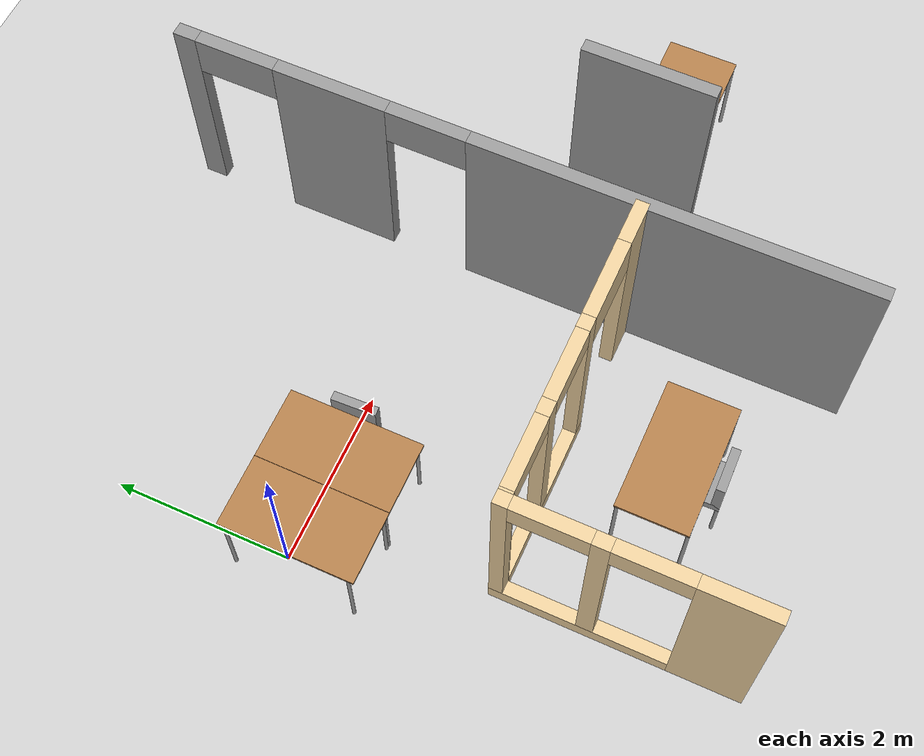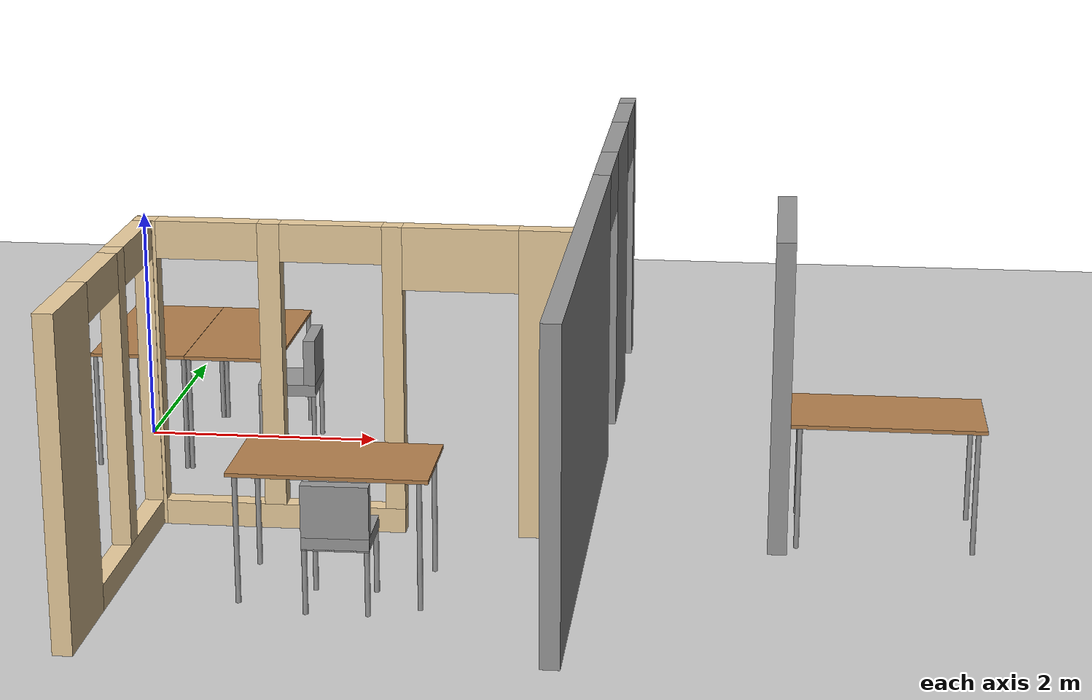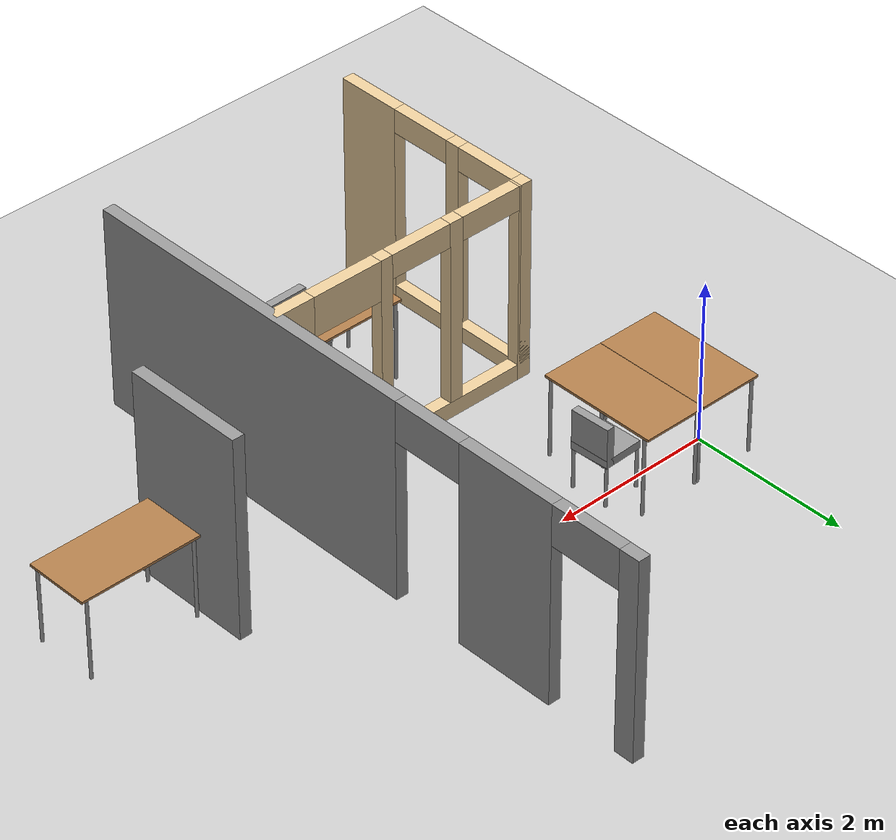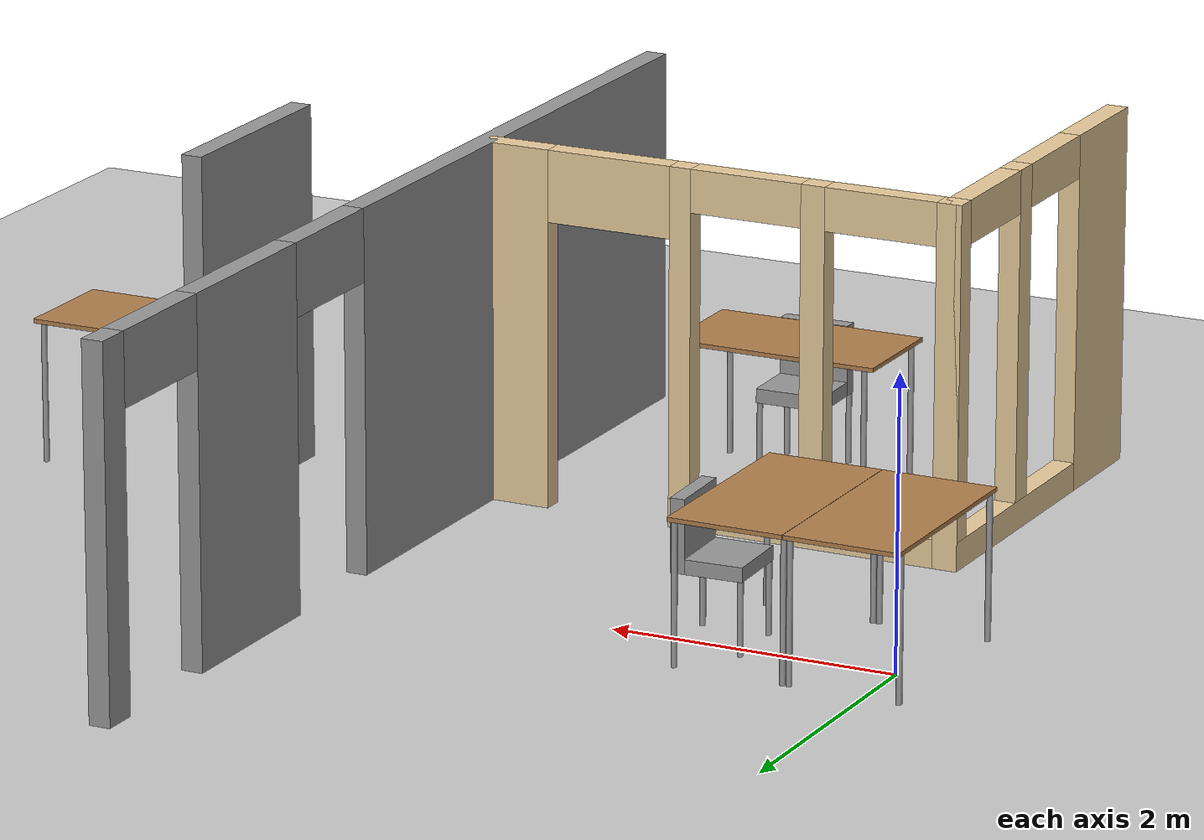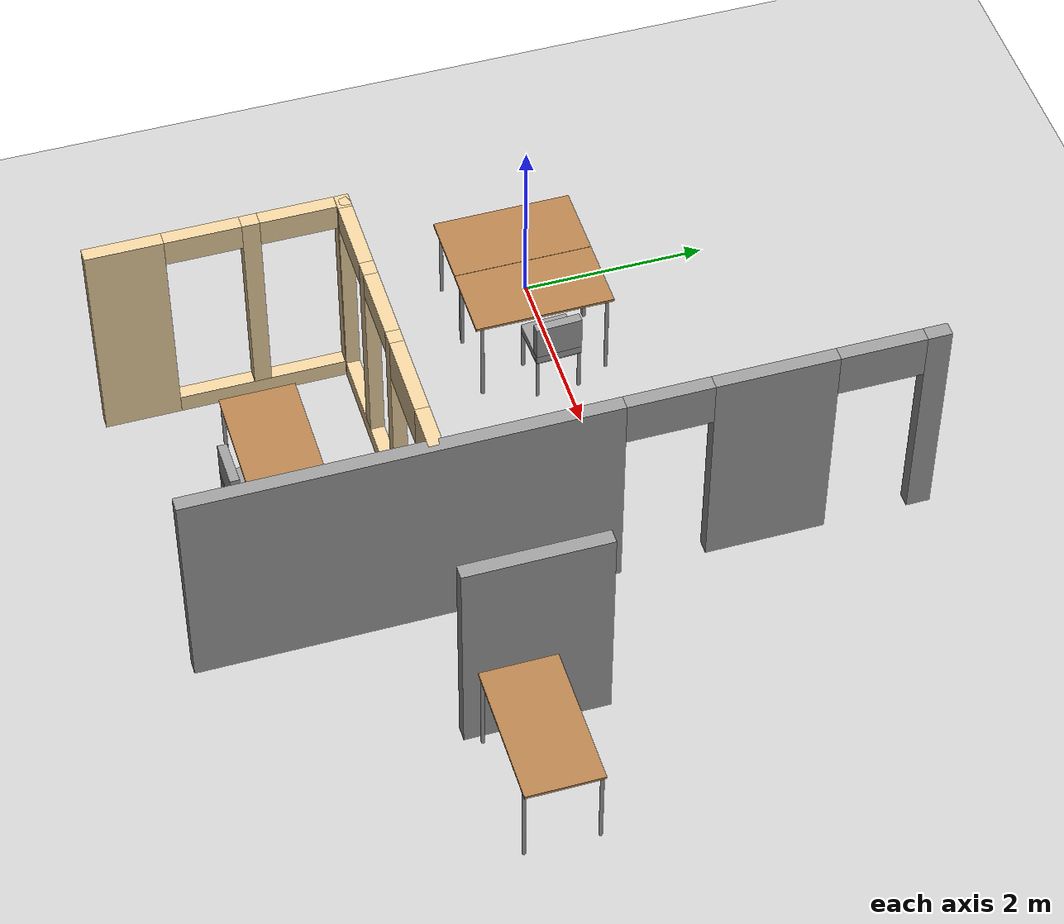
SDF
<sdf version="1.6">
 <world name="default">
  <model name="ground_plane">
   <static>1</static>
   <link name="link">
    <collision name="collision">
     <geometry><plane><normal>0 0 1</normal><size>100 100</size></plane></geometry>
     <surface>
      <contact><collide_bitmask>65535</collide_bitmask></contact>
      <friction><ode><mu>100</mu><mu2>50</mu2></ode></friction>
     </surface>
    </collision>
    <visual name="visual">
     <cast_shadows>0</cast_shadows>
     <geometry><plane><normal>0 0 1</normal><size>100 100</size></plane></geometry>
     <material>
      <script><uri>file://media/materials/scripts/gazebo.material</uri><name>Gazebo/Grey</name></script>
     </material>
    </visual>
   </link>
  </model>
  <model name="dunder_mifflin_scranton_full">
   <pose>4.5312 0.479645 0 0 -0 0</pose>
   <link name="Wall_26">
    <pose>-0.532245 -1.26075 0 0 -0 -1.5708</pose>
    <visual name="Wall_26_Visual_0">
     <pose>-3.74743 0 1.25 0 -0 0</pose>
     <geometry><box><size>0.255133 0.15 2.5</size></box></geometry>
     <material>
      <script><uri>file://media/materials/scripts/gazebo.material</uri><name>Gazebo/Grey</name></script>
      <ambient>1 1 1 1</ambient>
     </material>
     <meta><layer>0</layer></meta>
    </visual>
    <collision name="Wall_26_Collision_0">
     <geometry><box><size>0.255133 0.15 2.5</size></box></geometry>
     <pose>-3.74743 0 1.25 0 -0 0</pose>
    </collision>
    <visual name="Wall_26_Visual_1">
     <pose>-2.08102 0 1.25 0 -0 0</pose>
     <geometry><box><size>1.27769 0.15 2.5</size></box></geometry>
     <material>
      <script><uri>file://media/materials/scripts/gazebo.material</uri><name>Gazebo/Grey</name></script>
      <ambient>1 1 1 1</ambient>
     </material>
     <meta><layer>0</layer></meta>
    </visual>
    <collision name="Wall_26_Collision_1">
     <geometry><box><size>1.27769 0.15 2.5</size></box></geometry>
     <pose>-2.08102 0 1.25 0 -0 0</pose>
    </collision>
    <visual name="Wall_26_Visual_2">
     <pose>1.66641 0 1.25 0 -0 0</pose>
     <geometry><box><size>4.41718 0.15 2.5</size></box></geometry>
     <material>
      <script><uri>file://media/materials/scripts/gazebo.material</uri><name>Gazebo/Grey</name></script>
      <ambient>1 1 1 1</ambient>
     </material>
     <meta><layer>0</layer></meta>
    </visual>
    <collision name="Wall_26_Collision_2">
     <geometry><box><size>4.41718 0.15 2.5</size></box></geometry>
     <pose>1.66641 0 1.25 0 -0 0</pose>
    </collision>
    <visual name="Wall_26_Visual_3">
     <pose>-3.16987 0 2.25 0 -0 0</pose>
     <geometry><box><size>0.9 0.15 0.5</size></box></geometry>
     <material>
      <script><uri>file://media/materials/scripts/gazebo.material</uri><name>Gazebo/Grey</name></script>
      <ambient>1 1 1 1</ambient>
     </material>
     <meta><layer>0</layer></meta>
    </visual>
    <collision name="Wall_26_Collision_3">
     <geometry><box><size>0.9 0.15 0.5</size></box></geometry>
     <pose>-3.16987 0 2.25 0 -0 0</pose>
    </collision>
    <visual name="Wall_26_Visual_4">
     <pose>-0.992175 0 2.25 0 -0 0</pose>
     <geometry><box><size>0.9 0.15 0.5</size></box></geometry>
     <material>
      <script><uri>file://media/materials/scripts/gazebo.material</uri><name>Gazebo/Grey</name></script>
      <ambient>1 1 1 1</ambient>
     </material>
     <meta><layer>0</layer></meta>
    </visual>
    <collision name="Wall_26_Collision_4">
     <geometry><box><size>0.9 0.15 0.5</size></box></geometry>
     <pose>-0.992175 0 2.25 0 -0 0</pose>
    </collision>
   </link>
   <link name="Wall_28">
    <pose>-3.95331 -3.89431 0 0 -0 1.5708</pose>
    <visual name="Wall_28_Visual_0">
     <pose>-0.969422 0 1.25 0 -0 0</pose>
     <geometry><box><size>0.811156 0.15 2.5</size></box></geometry>
     <material>
      <script><uri>file://media/materials/scripts/gazebo.material</uri><name>Gazebo/Grey</name></script>
      <ambient>0.921569 0.807843 0.615686 1</ambient>
     </material>
     <meta><layer>0</layer></meta>
    </visual>
    <collision name="Wall_28_Collision_0">
     <geometry><box><size>0.811156 0.15 2.5</size></box></geometry>
     <pose>-0.969422 0 1.25 0 -0 0</pose>
    </collision>
    <visual name="Wall_28_Visual_1">
     <pose>0.405578 0 0.1 0 -0 0</pose>
     <geometry><box><size>1.93884 0.15 0.2</size></box></geometry>
     <material>
      <script><uri>file://media/materials/scripts/gazebo.material</uri><name>Gazebo/Grey</name></script>
      <ambient>0.921569 0.807843 0.615686 1</ambient>
     </material>
     <meta><layer>0</layer></meta>
    </visual>
    <collision name="Wall_28_Collision_1">
     <geometry><box><size>1.93884 0.15 0.2</size></box></geometry>
     <pose>0.405578 0 0.1 0 -0 0</pose>
    </collision>
    <visual name="Wall_28_Visual_2">
     <pose>0.328659 0 1.35 0 -0 0</pose>
     <geometry><box><size>0.185005 0.15 2.3</size></box></geometry>
     <material>
      <script><uri>file://media/materials/scripts/gazebo.material</uri><name>Gazebo/Grey</name></script>
      <ambient>0.921569 0.807843 0.615686 1</ambient>
     </material>
     <meta><layer>0</layer></meta>
    </visual>
    <collision name="Wall_28_Collision_2">
     <geometry><box><size>0.185005 0.15 2.3</size></box></geometry>
     <pose>0.328659 0 1.35 0 -0 0</pose>
    </collision>
    <visual name="Wall_28_Visual_3">
     <pose>1.29808 0 1.35 0 -0 0</pose>
     <geometry><box><size>0.153838 0.15 2.3</size></box></geometry>
     <material>
      <script><uri>file://media/materials/scripts/gazebo.material</uri><name>Gazebo/Grey</name></script>
      <ambient>0.921569 0.807843 0.615686 1</ambient>
     </material>
     <meta><layer>0</layer></meta>
    </visual>
    <collision name="Wall_28_Collision_3">
     <geometry><box><size>0.153838 0.15 2.3</size></box></geometry>
     <pose>1.29808 0 1.35 0 -0 0</pose>
    </collision>
    <visual name="Wall_28_Visual_4">
     <pose>-0.163844 0 2.35 0 -0 0</pose>
     <geometry><box><size>0.8 0.15 0.3</size></box></geometry>
     <material>
      <script><uri>file://media/materials/scripts/gazebo.material</uri><name>Gazebo/Grey</name></script>
      <ambient>0.921569 0.807843 0.615686 1</ambient>
     </material>
     <meta><layer>0</layer></meta>
    </visual>
    <collision name="Wall_28_Collision_4">
     <geometry><box><size>0.8 0.15 0.3</size></box></geometry>
     <pose>-0.163844 0 2.35 0 -0 0</pose>
    </collision>
    <visual name="Wall_28_Visual_5">
     <pose>0.821162 0 2.35 0 -0 0</pose>
     <geometry><box><size>0.8 0.15 0.3</size></box></geometry>
     <material>
      <script><uri>file://media/materials/scripts/gazebo.material</uri><name>Gazebo/Grey</name></script>
      <ambient>0.921569 0.807843 0.615686 1</ambient>
     </material>
     <meta><layer>0</layer></meta>
    </visual>
    <collision name="Wall_28_Collision_5">
     <geometry><box><size>0.8 0.15 0.3</size></box></geometry>
     <pose>0.821162 0 2.35 0 -0 0</pose>
    </collision>
   </link>
   <link name="Wall_29">
    <pose>-2.27831 -2.59431 0 0 -0 0</pose>
    <visual name="Wall_29_Visual_0">
     <pose>-1.66131 0 1.25 0 -0 0</pose>
     <geometry><box><size>0.177371 0.15 2.5</size></box></geometry>
     <material>
      <script><uri>file://media/materials/scripts/gazebo.material</uri><name>Gazebo/Grey</name></script>
      <ambient>0.921569 0.807843 0.615686 1</ambient>
     </material>
     <meta><layer>0</layer></meta>
    </visual>
    <collision name="Wall_29_Collision_0">
     <geometry><box><size>0.177371 0.15 2.5</size></box></geometry>
     <pose>-1.66131 0 1.25 0 -0 0</pose>
    </collision>
    <visual name="Wall_29_Visual_1">
     <pose>1.50358 0 1.25 0 -0 0</pose>
     <geometry><box><size>0.492835 0.15 2.5</size></box></geometry>
     <material>
      <script><uri>file://media/materials/scripts/gazebo.material</uri><name>Gazebo/Grey</name></script>
      <ambient>0.921569 0.807843 0.615686 1</ambient>
     </material>
     <meta><layer>0</layer></meta>
    </visual>
    <collision name="Wall_29_Collision_1">
     <geometry><box><size>0.492835 0.15 2.5</size></box></geometry>
     <pose>1.50358 0 1.25 0 -0 0</pose>
    </collision>
    <visual name="Wall_29_Visual_2">
     <pose>-0.607732 0 0.1 0 -0 0</pose>
     <geometry><box><size>1.92979 0.15 0.2</size></box></geometry>
     <material>
      <script><uri>file://media/materials/scripts/gazebo.material</uri><name>Gazebo/Grey</name></script>
      <ambient>0.921569 0.807843 0.615686 1</ambient>
     </material>
     <meta><layer>0</layer></meta>
    </visual>
    <collision name="Wall_29_Collision_2">
     <geometry><box><size>1.92979 0.15 0.2</size></box></geometry>
     <pose>-0.607732 0 0.1 0 -0 0</pose>
    </collision>
    <visual name="Wall_29_Visual_3">
     <pose>-0.685949 0 1.35 0 -0 0</pose>
     <geometry><box><size>0.17336 0.15 2.3</size></box></geometry>
     <material>
      <script><uri>file://media/materials/scripts/gazebo.material</uri><name>Gazebo/Grey</name></script>
      <ambient>0.921569 0.807843 0.615686 1</ambient>
     </material>
     <meta><layer>0</layer></meta>
    </visual>
    <collision name="Wall_29_Collision_3">
     <geometry><box><size>0.17336 0.15 2.3</size></box></geometry>
     <pose>-0.685949 0 1.35 0 -0 0</pose>
    </collision>
    <visual name="Wall_29_Visual_4">
     <pose>0.278948 0 1.35 0 -0 0</pose>
     <geometry><box><size>0.156434 0.15 2.3</size></box></geometry>
     <material>
      <script><uri>file://media/materials/scripts/gazebo.material</uri><name>Gazebo/Grey</name></script>
      <ambient>0.921569 0.807843 0.615686 1</ambient>
     </material>
     <meta><layer>0</layer></meta>
    </visual>
    <collision name="Wall_29_Collision_4">
     <geometry><box><size>0.156434 0.15 2.3</size></box></geometry>
     <pose>0.278948 0 1.35 0 -0 0</pose>
    </collision>
    <visual name="Wall_29_Visual_5">
     <pose>0.807165 0 2.25 0 -0 0</pose>
     <geometry><box><size>0.9 0.15 0.5</size></box></geometry>
     <material>
      <script><uri>file://media/materials/scripts/gazebo.material</uri><name>Gazebo/Grey</name></script>
      <ambient>0.921569 0.807843 0.615686 1</ambient>
     </material>
     <meta><layer>0</layer></meta>
    </visual>
    <collision name="Wall_29_Collision_5">
     <geometry><box><size>0.9 0.15 0.5</size></box></geometry>
     <pose>0.807165 0 2.25 0 -0 0</pose>
    </collision>
    <visual name="Wall_29_Visual_6">
     <pose>-1.17263 0 2.35 0 -0 0</pose>
     <geometry><box><size>0.8 0.15 0.3</size></box></geometry>
     <material>
      <script><uri>file://media/materials/scripts/gazebo.material</uri><name>Gazebo/Grey</name></script>
      <ambient>0.921569 0.807843 0.615686 1</ambient>
     </material>
     <meta><layer>0</layer></meta>
    </visual>
    <collision name="Wall_29_Collision_6">
     <geometry><box><size>0.8 0.15 0.3</size></box></geometry>
     <pose>-1.17263 0 2.35 0 -0 0</pose>
    </collision>
    <visual name="Wall_29_Visual_7">
     <pose>-0.199269 0 2.35 0 -0 0</pose>
     <geometry><box><size>0.8 0.15 0.3</size></box></geometry>
     <material>
      <script><uri>file://media/materials/scripts/gazebo.material</uri><name>Gazebo/Grey</name></script>
      <ambient>0.921569 0.807843 0.615686 1</ambient>
     </material>
     <meta><layer>0</layer></meta>
    </visual>
    <collision name="Wall_29_Collision_7">
     <geometry><box><size>0.8 0.15 0.3</size></box></geometry>
     <pose>-0.199269 0 2.35 0 -0 0</pose>
    </collision>
   </link>
   <link name="Wall_55">
    <collision name="Wall_55_Collision">
     <geometry><box><size>1.5 0.15 2.5</size></box></geometry>
     <pose>0 0 1.25 0 -0 0</pose>
    </collision>
    <visual name="Wall_55_Visual">
     <pose>0 0 1.25 0 -0 0</pose>
     <geometry><box><size>1.5 0.15 2.5</size></box></geometry>
     <material>
      <script><uri>file://media/materials/scripts/gazebo.material</uri><name>Gazebo/Grey</name></script>
      <ambient>1 1 1 1</ambient>
     </material>
     <meta><layer>0</layer></meta>
    </visual>
    <pose>1.01387 -2.07397 0 0 -0 -1.5708</pose>
   </link>
   <static>1</static>
  </model>
  <model name="table_7">
   <static>1</static>
   <link name="link">
    <collision name="surface">
     <pose>0 0 1 0 -0 0</pose>
     <geometry><box><size>1.5 0.8 0.03</size></box></geometry>
     <surface><friction><ode><mu>0.6</mu><mu2>0.6</mu2></ode></friction></surface>
    </collision>
    <visual name="visual1">
     <pose>0 0 1 0 -0 0</pose>
     <geometry><box><size>1.5 0.8 0.03</size></box></geometry>
     <material>
      <script><uri>file://media/materials/scripts/gazebo.material</uri><name>Gazebo/Wood</name></script>
     </material>
    </visual>
    <collision name="front_left_leg">
     <pose>0.68 0.38 0.5 0 -0 0</pose>
     <geometry><cylinder><radius>0.02</radius><length>1</length></cylinder></geometry>
    </collision>
    <visual name="front_left_leg">
     <pose>0.68 0.38 0.5 0 -0 0</pose>
     <geometry><cylinder><radius>0.02</radius><length>1</length></cylinder></geometry>
     <material>
      <script><uri>file://media/materials/scripts/gazebo.material</uri><name>Gazebo/Grey</name></script>
     </material>
    </visual>
    <collision name="front_right_leg">
     <pose>0.68 -0.38 0.5 0 -0 0</pose>
     <geometry><cylinder><radius>0.02</radius><length>1</length></cylinder></geometry>
    </collision>
    <visual name="front_right_leg">
     <pose>0.68 -0.38 0.5 0 -0 0</pose>
     <geometry><cylinder><radius>0.02</radius><length>1</length></cylinder></geometry>
     <material>
      <script><uri>file://media/materials/scripts/gazebo.material</uri><name>Gazebo/Grey</name></script>
     </material>
    </visual>
    <collision name="back_right_leg">
     <pose>-0.68 -0.38 0.5 0 -0 0</pose>
     <geometry><cylinder><radius>0.02</radius><length>1</length></cylinder></geometry>
    </collision>
    <visual name="back_right_leg">
     <pose>-0.68 -0.38 0.5 0 -0 0</pose>
     <geometry><cylinder><radius>0.02</radius><length>1</length></cylinder></geometry>
     <material>
      <script><uri>file://media/materials/scripts/gazebo.material</uri><name>Gazebo/Grey</name></script>
     </material>
    </visual>
    <collision name="back_left_leg">
     <pose>-0.68 0.38 0.5 0 -0 0</pose>
     <geometry><cylinder><radius>0.02</radius><length>1</length></cylinder></geometry>
    </collision>
    <visual name="back_left_leg">
     <pose>-0.68 0.38 0.5 0 -0 0</pose>
     <geometry><cylinder><radius>0.02</radius><length>1</length></cylinder></geometry>
     <material>
      <script><uri>file://media/materials/scripts/gazebo.material</uri><name>Gazebo/Grey</name></script>
     </material>
    </visual>
   </link>
   <pose>0.946741 -0.198851 0 0 0 -1.5708</pose>
  </model>
  <model name="table_8">
   <static>1</static>
   <link name="link">
    <collision name="surface">
     <pose>0 0 1 0 -0 0</pose>
     <geometry><box><size>1.5 0.8 0.03</size></box></geometry>
     <surface><friction><ode><mu>0.6</mu><mu2>0.6</mu2></ode></friction></surface>
    </collision>
    <visual name="visual1">
     <pose>0 0 1 0 -0 0</pose>
     <geometry><box><size>1.5 0.8 0.03</size></box></geometry>
     <material>
      <script><uri>file://media/materials/scripts/gazebo.material</uri><name>Gazebo/Wood</name></script>
     </material>
    </visual>
    <collision name="front_left_leg">
     <pose>0.68 0.38 0.5 0 -0 0</pose>
     <geometry><cylinder><radius>0.02</radius><length>1</length></cylinder></geometry>
    </collision>
    <visual name="front_left_leg">
     <pose>0.68 0.38 0.5 0 -0 0</pose>
     <geometry><cylinder><radius>0.02</radius><length>1</length></cylinder></geometry>
     <material>
      <script><uri>file://media/materials/scripts/gazebo.material</uri><name>Gazebo/Grey</name></script>
     </material>
    </visual>
    <collision name="front_right_leg">
     <pose>0.68 -0.38 0.5 0 -0 0</pose>
     <geometry><cylinder><radius>0.02</radius><length>1</length></cylinder></geometry>
    </collision>
    <visual name="front_right_leg">
     <pose>0.68 -0.38 0.5 0 -0 0</pose>
     <geometry><cylinder><radius>0.02</radius><length>1</length></cylinder></geometry>
     <material>
      <script><uri>file://media/materials/scripts/gazebo.material</uri><name>Gazebo/Grey</name></script>
     </material>
    </visual>
    <collision name="back_right_leg">
     <pose>-0.68 -0.38 0.5 0 -0 0</pose>
     <geometry><cylinder><radius>0.02</radius><length>1</length></cylinder></geometry>
    </collision>
    <visual name="back_right_leg">
     <pose>-0.68 -0.38 0.5 0 -0 0</pose>
     <geometry><cylinder><radius>0.02</radius><length>1</length></cylinder></geometry>
     <material>
      <script><uri>file://media/materials/scripts/gazebo.material</uri><name>Gazebo/Grey</name></script>
     </material>
    </visual>
    <collision name="back_left_leg">
     <pose>-0.68 0.38 0.5 0 -0 0</pose>
     <geometry><cylinder><radius>0.02</radius><length>1</length></cylinder></geometry>
    </collision>
    <visual name="back_left_leg">
     <pose>-0.68 0.38 0.5 0 -0 0</pose>
     <geometry><cylinder><radius>0.02</radius><length>1</length></cylinder></geometry>
     <material>
      <script><uri>file://media/materials/scripts/gazebo.material</uri><name>Gazebo/Grey</name></script>
     </material>
    </visual>
   </link>
   <pose>0.143422 -0.19819 0 0 0 -1.5708</pose>
  </model>
  <model name="chair_9">
   <link name="link_0">
    <inertial>
     <mass>1</mass>
     <inertia><ixx>0.145833</ixx><ixy>0</ixy><ixz>0</ixz><iyy>0.145833</iyy><iyz>0</iyz><izz>0.125</izz></inertia>
    </inertial>
    <pose>-0.23 -0.19667 -0.280001 0 -0 0</pose>
    <visual name="visual">
     <geometry><cylinder><radius>0.02</radius><length>0.5</length></cylinder></geometry>
     <material>
      <lighting>1</lighting>
      <script><uri>file://media/materials/scripts/gazebo.material</uri><name>Gazebo/Grey</name></script>
      <shader type="vertex"><normal_map>__default__</normal_map></shader>
      <ambient>0.3 0.3 0.3 1</ambient>
      <diffuse>0.7 0.7 0.7 1</diffuse>
      <specular>0.01 0.01 0.01 1</specular>
      <emissive>0 0 0 1</emissive>
     </material>
    </visual>
    <collision name="collision">
     <geometry><cylinder><radius>0.02</radius><length>0.5</length></cylinder></geometry>
     <surface>
      <friction>
       <ode><mu>1</mu><mu2>1</mu2><fdir1>0 0 0</fdir1><slip1>0</slip1><slip2>0</slip2></ode>
       <torsional>
        <coefficient>1</coefficient>
        <patch_radius>0</patch_radius>
        <surface_radius>0</surface_radius>
        <use_patch_radius>1</use_patch_radius>
        <ode><slip>0</slip></ode>
       </torsional>
      </friction>
      <bounce><restitution_coefficient>0</restitution_coefficient><threshold>1e+06</threshold></bounce>
      <contact>
       <collide_without_contact>0</collide_without_contact>
       <collide_without_contact_bitmask>1</collide_without_contact_bitmask>
       <collide_bitmask>1</collide_bitmask>
       <ode>
        <soft_cfm>0</soft_cfm>
        <soft_erp>0.2</soft_erp>
        <kp>1e+13</kp>
        <kd>1</kd>
        <max_vel>0.01</max_vel>
        <min_depth>0</min_depth>
       </ode>
       <bullet>
        <split_impulse>1</split_impulse>
        <split_impulse_penetration_threshold>-0.01</split_impulse_penetration_threshold>
        <soft_cfm>0</soft_cfm>
        <soft_erp>0.2</soft_erp>
        <kp>1e+13</kp>
        <kd>1</kd>
       </bullet>
      </contact>
     </surface>
    </collision>
   </link>
   <link name="link_0_clone">
    <inertial>
     <mass>1</mass>
     <inertia><ixx>0.145833</ixx><ixy>0</ixy><ixz>0</ixz><iyy>0.145833</iyy><iyz>0</iyz><izz>0.125</izz></inertia>
    </inertial>
    <pose>0.23 -0.19667 -0.280001 0 -0 0</pose>
    <visual name="visual">
     <geometry><cylinder><radius>0.02</radius><length>0.5</length></cylinder></geometry>
     <material>
      <lighting>1</lighting>
      <script><uri>file://media/materials/scripts/gazebo.material</uri><name>Gazebo/Grey</name></script>
      <shader type="vertex"><normal_map>__default__</normal_map></shader>
      <ambient>0.3 0.3 0.3 1</ambient>
      <diffuse>0.7 0.7 0.7 1</diffuse>
      <specular>0.01 0.01 0.01 1</specular>
      <emissive>0 0 0 1</emissive>
     </material>
    </visual>
    <collision name="collision">
     <geometry><cylinder><radius>0.02</radius><length>0.5</length></cylinder></geometry>
     <surface>
      <friction>
       <ode><mu>1</mu><mu2>1</mu2><fdir1>0 0 0</fdir1><slip1>0</slip1><slip2>0</slip2></ode>
       <torsional>
        <coefficient>1</coefficient>
        <patch_radius>0</patch_radius>
        <surface_radius>0</surface_radius>
        <use_patch_radius>1</use_patch_radius>
        <ode><slip>0</slip></ode>
       </torsional>
      </friction>
      <bounce><restitution_coefficient>0</restitution_coefficient><threshold>1e+06</threshold></bounce>
      <contact>
       <collide_without_contact>0</collide_without_contact>
       <collide_without_contact_bitmask>1</collide_without_contact_bitmask>
       <collide_bitmask>1</collide_bitmask>
       <ode>
        <soft_cfm>0</soft_cfm>
        <soft_erp>0.2</soft_erp>
        <kp>1e+13</kp>
        <kd>1</kd>
        <max_vel>0.01</max_vel>
        <min_depth>0</min_depth>
       </ode>
       <bullet>
        <split_impulse>1</split_impulse>
        <split_impulse_penetration_threshold>-0.01</split_impulse_penetration_threshold>
        <soft_cfm>0</soft_cfm>
        <soft_erp>0.2</soft_erp>
        <kp>1e+13</kp>
        <kd>1</kd>
       </bullet>
      </contact>
     </surface>
    </collision>
   </link>
   <link name="link_0_clone_0">
    <inertial>
     <mass>1</mass>
     <inertia><ixx>0.145833</ixx><ixy>0</ixy><ixz>0</ixz><iyy>0.145833</iyy><iyz>0</iyz><izz>0.125</izz></inertia>
    </inertial>
    <pose>0.23 0.26333 -0.280001 0 -0 0</pose>
    <visual name="visual">
     <geometry><cylinder><radius>0.02</radius><length>0.5</length></cylinder></geometry>
     <material>
      <lighting>1</lighting>
      <script><uri>file://media/materials/scripts/gazebo.material</uri><name>Gazebo/Grey</name></script>
      <shader type="vertex"><normal_map>__default__</normal_map></shader>
      <ambient>0.3 0.3 0.3 1</ambient>
      <diffuse>0.7 0.7 0.7 1</diffuse>
      <specular>0.01 0.01 0.01 1</specular>
      <emissive>0 0 0 1</emissive>
     </material>
    </visual>
    <collision name="collision">
     <geometry><cylinder><radius>0.02</radius><length>0.5</length></cylinder></geometry>
     <surface>
      <friction>
       <ode><mu>1</mu><mu2>1</mu2><fdir1>0 0 0</fdir1><slip1>0</slip1><slip2>0</slip2></ode>
       <torsional>
        <coefficient>1</coefficient>
        <patch_radius>0</patch_radius>
        <surface_radius>0</surface_radius>
        <use_patch_radius>1</use_patch_radius>
        <ode><slip>0</slip></ode>
       </torsional>
      </friction>
      <bounce><restitution_coefficient>0</restitution_coefficient><threshold>1e+06</threshold></bounce>
      <contact>
       <collide_without_contact>0</collide_without_contact>
       <collide_without_contact_bitmask>1</collide_without_contact_bitmask>
       <collide_bitmask>1</collide_bitmask>
       <ode>
        <soft_cfm>0</soft_cfm>
        <soft_erp>0.2</soft_erp>
        <kp>1e+13</kp>
        <kd>1</kd>
        <max_vel>0.01</max_vel>
        <min_depth>0</min_depth>
       </ode>
       <bullet>
        <split_impulse>1</split_impulse>
        <split_impulse_penetration_threshold>-0.01</split_impulse_penetration_threshold>
        <soft_cfm>0</soft_cfm>
        <soft_erp>0.2</soft_erp>
        <kp>1e+13</kp>
        <kd>1</kd>
       </bullet>
      </contact>
     </surface>
    </collision>
   </link>
   <link name="link_0_clone_1">
    <inertial>
     <mass>1</mass>
     <inertia><ixx>0.145833</ixx><ixy>0</ixy><ixz>0</ixz><iyy>0.145833</iyy><iyz>0</iyz><izz>0.125</izz></inertia>
    </inertial>
    <pose>-0.23 0.26333 -0.280001 0 -0 0</pose>
    <visual name="visual">
     <geometry><cylinder><radius>0.02</radius><length>0.5</length></cylinder></geometry>
     <material>
      <lighting>1</lighting>
      <script><uri>file://media/materials/scripts/gazebo.material</uri><name>Gazebo/Grey</name></script>
      <shader type="vertex"><normal_map>__default__</normal_map></shader>
      <ambient>0.3 0.3 0.3 1</ambient>
      <diffuse>0.7 0.7 0.7 1</diffuse>
      <specular>0.01 0.01 0.01 1</specular>
      <emissive>0 0 0 1</emissive>
     </material>
    </visual>
    <collision name="collision">
     <geometry><cylinder><radius>0.02</radius><length>0.5</length></cylinder></geometry>
     <surface>
      <friction>
       <ode><mu>1</mu><mu2>1</mu2><fdir1>0 0 0</fdir1><slip1>0</slip1><slip2>0</slip2></ode>
       <torsional>
        <coefficient>1</coefficient>
        <patch_radius>0</patch_radius>
        <surface_radius>0</surface_radius>
        <use_patch_radius>1</use_patch_radius>
        <ode><slip>0</slip></ode>
       </torsional>
      </friction>
      <bounce><restitution_coefficient>0</restitution_coefficient><threshold>1e+06</threshold></bounce>
      <contact>
       <collide_without_contact>0</collide_without_contact>
       <collide_without_contact_bitmask>1</collide_without_contact_bitmask>
       <collide_bitmask>1</collide_bitmask>
       <ode>
        <soft_cfm>0</soft_cfm>
        <soft_erp>0.2</soft_erp>
        <kp>1e+13</kp>
        <kd>1</kd>
        <max_vel>0.01</max_vel>
        <min_depth>0</min_depth>
       </ode>
       <bullet>
        <split_impulse>1</split_impulse>
        <split_impulse_penetration_threshold>-0.01</split_impulse_penetration_threshold>
        <soft_cfm>0</soft_cfm>
        <soft_erp>0.2</soft_erp>
        <kp>1e+13</kp>
        <kd>1</kd>
       </bullet>
      </contact>
     </surface>
    </collision>
   </link>
   <link name="link_2">
    <inertial>
     <mass>1</mass>
     <inertia>
      <ixx>0.166667</ixx>
      <ixy>0</ixy>
      <ixz>0</ixz>
      <iyy>0.166667</iyy>
      <iyz>0</iyz>
      <izz>0.166667</izz>
     </inertia>
    </inertial>
    <pose>0 0.03333 0.019999 0 -0 0</pose>
    <visual name="visual">
     <geometry><box><size>0.5 0.5 0.1</size></box></geometry>
     <material>
      <lighting>1</lighting>
      <script><uri>file://media/materials/scripts/gazebo.material</uri><name>Gazebo/Grey</name></script>
      <shader type="vertex"><normal_map>__default__</normal_map></shader>
      <ambient>0.3 0.3 0.3 1</ambient>
      <diffuse>0.7 0.7 0.7 1</diffuse>
      <specular>0.01 0.01 0.01 1</specular>
      <emissive>0 0 0 1</emissive>
     </material>
    </visual>
    <collision name="collision">
     <geometry><box><size>0.5 0.5 0.1</size></box></geometry>
     <surface>
      <friction>
       <ode><mu>1</mu><mu2>1</mu2><fdir1>0 0 0</fdir1><slip1>0</slip1><slip2>0</slip2></ode>
       <torsional>
        <coefficient>1</coefficient>
        <patch_radius>0</patch_radius>
        <surface_radius>0</surface_radius>
        <use_patch_radius>1</use_patch_radius>
        <ode><slip>0</slip></ode>
       </torsional>
      </friction>
      <bounce><restitution_coefficient>0</restitution_coefficient><threshold>1e+06</threshold></bounce>
      <contact>
       <collide_without_contact>0</collide_without_contact>
       <collide_without_contact_bitmask>1</collide_without_contact_bitmask>
       <collide_bitmask>1</collide_bitmask>
       <ode>
        <soft_cfm>0</soft_cfm>
        <soft_erp>0.2</soft_erp>
        <kp>1e+13</kp>
        <kd>1</kd>
        <max_vel>0.01</max_vel>
        <min_depth>0</min_depth>
       </ode>
       <bullet>
        <split_impulse>1</split_impulse>
        <split_impulse_penetration_threshold>-0.01</split_impulse_penetration_threshold>
        <soft_cfm>0</soft_cfm>
        <soft_erp>0.2</soft_erp>
        <kp>1e+13</kp>
        <kd>1</kd>
       </bullet>
      </contact>
     </surface>
    </collision>
   </link>
   <link name="link_2_clone">
    <inertial>
     <mass>1</mass>
     <inertia>
      <ixx>0.166667</ixx>
      <ixy>0</ixy>
      <ixz>0</ixz>
      <iyy>0.166667</iyy>
      <iyz>0</iyz>
      <izz>0.166667</izz>
     </inertia>
    </inertial>
    <pose>0 -0.166646 0.220004 1.5707 -0 0</pose>
    <visual name="visual">
     <geometry><box><size>0.5 0.5 0.1</size></box></geometry>
     <material>
      <lighting>1</lighting>
      <script><uri>file://media/materials/scripts/gazebo.material</uri><name>Gazebo/Grey</name></script>
      <shader type="vertex"><normal_map>__default__</normal_map></shader>
      <ambient>0.3 0.3 0.3 1</ambient>
      <diffuse>0.7 0.7 0.7 1</diffuse>
      <specular>0.01 0.01 0.01 1</specular>
      <emissive>0 0 0 1</emissive>
     </material>
    </visual>
    <collision name="collision">
     <geometry><box><size>0.5 0.5 0.1</size></box></geometry>
     <surface>
      <friction>
       <ode><mu>1</mu><mu2>1</mu2><fdir1>0 0 0</fdir1><slip1>0</slip1><slip2>0</slip2></ode>
       <torsional>
        <coefficient>1</coefficient>
        <patch_radius>0</patch_radius>
        <surface_radius>0</surface_radius>
        <use_patch_radius>1</use_patch_radius>
        <ode><slip>0</slip></ode>
       </torsional>
      </friction>
      <bounce><restitution_coefficient>0</restitution_coefficient><threshold>1e+06</threshold></bounce>
      <contact>
       <collide_without_contact>0</collide_without_contact>
       <collide_without_contact_bitmask>1</collide_without_contact_bitmask>
       <collide_bitmask>1</collide_bitmask>
       <ode>
        <soft_cfm>0</soft_cfm>
        <soft_erp>0.2</soft_erp>
        <kp>1e+13</kp>
        <kd>1</kd>
        <max_vel>0.01</max_vel>
        <min_depth>0</min_depth>
       </ode>
       <bullet>
        <split_impulse>1</split_impulse>
        <split_impulse_penetration_threshold>-0.01</split_impulse_penetration_threshold>
        <soft_cfm>0</soft_cfm>
        <soft_erp>0.2</soft_erp>
        <kp>1e+13</kp>
        <kd>1</kd>
       </bullet>
      </contact>
     </surface>
    </collision>
   </link>
   <joint name="link_0_clone_JOINT_2" type="fixed">
    <parent>link_2</parent>
    <child>link_0_clone</child>
    <physics>
     <ode><limit><cfm>0</cfm><erp>0.2</erp></limit><suspension><cfm>0</cfm><erp>0.2</erp></suspension></ode>
    </physics>
   </joint>
   <joint name="link_2_JOINT_1" type="fixed">
    <parent>link_2</parent>
    <child>link_0</child>
    <physics>
     <ode><limit><cfm>0</cfm><erp>0.2</erp></limit><suspension><cfm>0</cfm><erp>0.2</erp></suspension></ode>
    </physics>
   </joint>
   <joint name="link_2_JOINT_3" type="fixed">
    <parent>link_2</parent>
    <child>link_0_clone_0</child>
    <physics>
     <ode><limit><cfm>0</cfm><erp>0.2</erp></limit><suspension><cfm>0</cfm><erp>0.2</erp></suspension></ode>
    </physics>
   </joint>
   <joint name="link_2_JOINT_4" type="fixed">
    <parent>link_2</parent>
    <child>link_0_clone_1</child>
    <physics>
     <ode><limit><cfm>0</cfm><erp>0.2</erp></limit><suspension><cfm>0</cfm><erp>0.2</erp></suspension></ode>
    </physics>
   </joint>
   <joint name="link_2_JOINT_5" type="fixed">
    <parent>link_2</parent>
    <child>link_2_clone</child>
    <physics>
     <ode><limit><cfm>0</cfm><erp>0.2</erp></limit><suspension><cfm>0</cfm><erp>0.2</erp></suspension></ode>
    </physics>
   </joint>
   <static>0</static>
   <pose>1.31551 -0.112125 0.530001 1e-06 0 1.61132</pose>
  </model>
  <model name="table_10">
   <static>1</static>
   <link name="link">
    <collision name="surface">
     <pose>0 0 1 0 -0 0</pose>
     <geometry><box><size>1.5 0.8 0.03</size></box></geometry>
     <surface><friction><ode><mu>0.6</mu><mu2>0.6</mu2></ode></friction></surface>
    </collision>
    <visual name="visual1">
     <pose>0 0 1 0 -0 0</pose>
     <geometry><box><size>1.5 0.8 0.03</size></box></geometry>
     <material>
      <script><uri>file://media/materials/scripts/gazebo.material</uri><name>Gazebo/Wood</name></script>
     </material>
    </visual>
    <collision name="front_left_leg">
     <pose>0.68 0.38 0.5 0 -0 0</pose>
     <geometry><cylinder><radius>0.02</radius><length>1</length></cylinder></geometry>
    </collision>
    <visual name="front_left_leg">
     <pose>0.68 0.38 0.5 0 -0 0</pose>
     <geometry><cylinder><radius>0.02</radius><length>1</length></cylinder></geometry>
     <material>
      <script><uri>file://media/materials/scripts/gazebo.material</uri><name>Gazebo/Grey</name></script>
     </material>
    </visual>
    <collision name="front_right_leg">
     <pose>0.68 -0.38 0.5 0 -0 0</pose>
     <geometry><cylinder><radius>0.02</radius><length>1</length></cylinder></geometry>
    </collision>
    <visual name="front_right_leg">
     <pose>0.68 -0.38 0.5 0 -0 0</pose>
     <geometry><cylinder><radius>0.02</radius><length>1</length></cylinder></geometry>
     <material>
      <script><uri>file://media/materials/scripts/gazebo.material</uri><name>Gazebo/Grey</name></script>
     </material>
    </visual>
    <collision name="back_right_leg">
     <pose>-0.68 -0.38 0.5 0 -0 0</pose>
     <geometry><cylinder><radius>0.02</radius><length>1</length></cylinder></geometry>
    </collision>
    <visual name="back_right_leg">
     <pose>-0.68 -0.38 0.5 0 -0 0</pose>
     <geometry><cylinder><radius>0.02</radius><length>1</length></cylinder></geometry>
     <material>
      <script><uri>file://media/materials/scripts/gazebo.material</uri><name>Gazebo/Grey</name></script>
     </material>
    </visual>
    <collision name="back_left_leg">
     <pose>-0.68 0.38 0.5 0 -0 0</pose>
     <geometry><cylinder><radius>0.02</radius><length>1</length></cylinder></geometry>
    </collision>
    <visual name="back_left_leg">
     <pose>-0.68 0.38 0.5 0 -0 0</pose>
     <geometry><cylinder><radius>0.02</radius><length>1</length></cylinder></geometry>
     <material>
      <script><uri>file://media/materials/scripts/gazebo.material</uri><name>Gazebo/Grey</name></script>
     </material>
    </visual>
   </link>
   <pose>2.27591 -3.32613 0 0 -0 0</pose>
  </model>
  <model name="chair_10">
   <link name="link_0">
    <inertial>
     <mass>1</mass>
     <inertia><ixx>0.145833</ixx><ixy>0</ixy><ixz>0</ixz><iyy>0.145833</iyy><iyz>0</iyz><izz>0.125</izz></inertia>
    </inertial>
    <pose>-0.23 -0.19667 -0.280001 0 -0 0</pose>
    <visual name="visual">
     <geometry><cylinder><radius>0.02</radius><length>0.5</length></cylinder></geometry>
     <material>
      <lighting>1</lighting>
      <script><uri>file://media/materials/scripts/gazebo.material</uri><name>Gazebo/Grey</name></script>
      <shader type="vertex"><normal_map>__default__</normal_map></shader>
      <ambient>0.3 0.3 0.3 1</ambient>
      <diffuse>0.7 0.7 0.7 1</diffuse>
      <specular>0.01 0.01 0.01 1</specular>
      <emissive>0 0 0 1</emissive>
     </material>
    </visual>
    <collision name="collision">
     <geometry><cylinder><radius>0.02</radius><length>0.5</length></cylinder></geometry>
     <surface>
      <friction>
       <ode><mu>1</mu><mu2>1</mu2><fdir1>0 0 0</fdir1><slip1>0</slip1><slip2>0</slip2></ode>
       <torsional>
        <coefficient>1</coefficient>
        <patch_radius>0</patch_radius>
        <surface_radius>0</surface_radius>
        <use_patch_radius>1</use_patch_radius>
        <ode><slip>0</slip></ode>
       </torsional>
      </friction>
      <bounce><restitution_coefficient>0</restitution_coefficient><threshold>1e+06</threshold></bounce>
      <contact>
       <collide_without_contact>0</collide_without_contact>
       <collide_without_contact_bitmask>1</collide_without_contact_bitmask>
       <collide_bitmask>1</collide_bitmask>
       <ode>
        <soft_cfm>0</soft_cfm>
        <soft_erp>0.2</soft_erp>
        <kp>1e+13</kp>
        <kd>1</kd>
        <max_vel>0.01</max_vel>
        <min_depth>0</min_depth>
       </ode>
       <bullet>
        <split_impulse>1</split_impulse>
        <split_impulse_penetration_threshold>-0.01</split_impulse_penetration_threshold>
        <soft_cfm>0</soft_cfm>
        <soft_erp>0.2</soft_erp>
        <kp>1e+13</kp>
        <kd>1</kd>
       </bullet>
      </contact>
     </surface>
    </collision>
   </link>
   <link name="link_0_clone">
    <inertial>
     <mass>1</mass>
     <inertia><ixx>0.145833</ixx><ixy>0</ixy><ixz>0</ixz><iyy>0.145833</iyy><iyz>0</iyz><izz>0.125</izz></inertia>
    </inertial>
    <pose>0.23 -0.19667 -0.280001 0 -0 0</pose>
    <visual name="visual">
     <geometry><cylinder><radius>0.02</radius><length>0.5</length></cylinder></geometry>
     <material>
      <lighting>1</lighting>
      <script><uri>file://media/materials/scripts/gazebo.material</uri><name>Gazebo/Grey</name></script>
      <shader type="vertex"><normal_map>__default__</normal_map></shader>
      <ambient>0.3 0.3 0.3 1</ambient>
      <diffuse>0.7 0.7 0.7 1</diffuse>
      <specular>0.01 0.01 0.01 1</specular>
      <emissive>0 0 0 1</emissive>
     </material>
    </visual>
    <collision name="collision">
     <geometry><cylinder><radius>0.02</radius><length>0.5</length></cylinder></geometry>
     <surface>
      <friction>
       <ode><mu>1</mu><mu2>1</mu2><fdir1>0 0 0</fdir1><slip1>0</slip1><slip2>0</slip2></ode>
       <torsional>
        <coefficient>1</coefficient>
        <patch_radius>0</patch_radius>
        <surface_radius>0</surface_radius>
        <use_patch_radius>1</use_patch_radius>
        <ode><slip>0</slip></ode>
       </torsional>
      </friction>
      <bounce><restitution_coefficient>0</restitution_coefficient><threshold>1e+06</threshold></bounce>
      <contact>
       <collide_without_contact>0</collide_without_contact>
       <collide_without_contact_bitmask>1</collide_without_contact_bitmask>
       <collide_bitmask>1</collide_bitmask>
       <ode>
        <soft_cfm>0</soft_cfm>
        <soft_erp>0.2</soft_erp>
        <kp>1e+13</kp>
        <kd>1</kd>
        <max_vel>0.01</max_vel>
        <min_depth>0</min_depth>
       </ode>
       <bullet>
        <split_impulse>1</split_impulse>
        <split_impulse_penetration_threshold>-0.01</split_impulse_penetration_threshold>
        <soft_cfm>0</soft_cfm>
        <soft_erp>0.2</soft_erp>
        <kp>1e+13</kp>
        <kd>1</kd>
       </bullet>
      </contact>
     </surface>
    </collision>
   </link>
   <link name="link_0_clone_0">
    <inertial>
     <mass>1</mass>
     <inertia><ixx>0.145833</ixx><ixy>0</ixy><ixz>0</ixz><iyy>0.145833</iyy><iyz>0</iyz><izz>0.125</izz></inertia>
    </inertial>
    <pose>0.23 0.26333 -0.280001 0 -0 0</pose>
    <visual name="visual">
     <geometry><cylinder><radius>0.02</radius><length>0.5</length></cylinder></geometry>
     <material>
      <lighting>1</lighting>
      <script><uri>file://media/materials/scripts/gazebo.material</uri><name>Gazebo/Grey</name></script>
      <shader type="vertex"><normal_map>__default__</normal_map></shader>
      <ambient>0.3 0.3 0.3 1</ambient>
      <diffuse>0.7 0.7 0.7 1</diffuse>
      <specular>0.01 0.01 0.01 1</specular>
      <emissive>0 0 0 1</emissive>
     </material>
    </visual>
    <collision name="collision">
     <geometry><cylinder><radius>0.02</radius><length>0.5</length></cylinder></geometry>
     <surface>
      <friction>
       <ode><mu>1</mu><mu2>1</mu2><fdir1>0 0 0</fdir1><slip1>0</slip1><slip2>0</slip2></ode>
       <torsional>
        <coefficient>1</coefficient>
        <patch_radius>0</patch_radius>
        <surface_radius>0</surface_radius>
        <use_patch_radius>1</use_patch_radius>
        <ode><slip>0</slip></ode>
       </torsional>
      </friction>
      <bounce><restitution_coefficient>0</restitution_coefficient><threshold>1e+06</threshold></bounce>
      <contact>
       <collide_without_contact>0</collide_without_contact>
       <collide_without_contact_bitmask>1</collide_without_contact_bitmask>
       <collide_bitmask>1</collide_bitmask>
       <ode>
        <soft_cfm>0</soft_cfm>
        <soft_erp>0.2</soft_erp>
        <kp>1e+13</kp>
        <kd>1</kd>
        <max_vel>0.01</max_vel>
        <min_depth>0</min_depth>
       </ode>
       <bullet>
        <split_impulse>1</split_impulse>
        <split_impulse_penetration_threshold>-0.01</split_impulse_penetration_threshold>
        <soft_cfm>0</soft_cfm>
        <soft_erp>0.2</soft_erp>
        <kp>1e+13</kp>
        <kd>1</kd>
       </bullet>
      </contact>
     </surface>
    </collision>
   </link>
   <link name="link_0_clone_1">
    <inertial>
     <mass>1</mass>
     <inertia><ixx>0.145833</ixx><ixy>0</ixy><ixz>0</ixz><iyy>0.145833</iyy><iyz>0</iyz><izz>0.125</izz></inertia>
    </inertial>
    <pose>-0.23 0.26333 -0.280001 0 -0 0</pose>
    <visual name="visual">
     <geometry><cylinder><radius>0.02</radius><length>0.5</length></cylinder></geometry>
     <material>
      <lighting>1</lighting>
      <script><uri>file://media/materials/scripts/gazebo.material</uri><name>Gazebo/Grey</name></script>
      <shader type="vertex"><normal_map>__default__</normal_map></shader>
      <ambient>0.3 0.3 0.3 1</ambient>
      <diffuse>0.7 0.7 0.7 1</diffuse>
      <specular>0.01 0.01 0.01 1</specular>
      <emissive>0 0 0 1</emissive>
     </material>
    </visual>
    <collision name="collision">
     <geometry><cylinder><radius>0.02</radius><length>0.5</length></cylinder></geometry>
     <surface>
      <friction>
       <ode><mu>1</mu><mu2>1</mu2><fdir1>0 0 0</fdir1><slip1>0</slip1><slip2>0</slip2></ode>
       <torsional>
        <coefficient>1</coefficient>
        <patch_radius>0</patch_radius>
        <surface_radius>0</surface_radius>
        <use_patch_radius>1</use_patch_radius>
        <ode><slip>0</slip></ode>
       </torsional>
      </friction>
      <bounce><restitution_coefficient>0</restitution_coefficient><threshold>1e+06</threshold></bounce>
      <contact>
       <collide_without_contact>0</collide_without_contact>
       <collide_without_contact_bitmask>1</collide_without_contact_bitmask>
       <collide_bitmask>1</collide_bitmask>
       <ode>
        <soft_cfm>0</soft_cfm>
        <soft_erp>0.2</soft_erp>
        <kp>1e+13</kp>
        <kd>1</kd>
        <max_vel>0.01</max_vel>
        <min_depth>0</min_depth>
       </ode>
       <bullet>
        <split_impulse>1</split_impulse>
        <split_impulse_penetration_threshold>-0.01</split_impulse_penetration_threshold>
        <soft_cfm>0</soft_cfm>
        <soft_erp>0.2</soft_erp>
        <kp>1e+13</kp>
        <kd>1</kd>
       </bullet>
      </contact>
     </surface>
    </collision>
   </link>
   <link name="link_2">
    <inertial>
     <mass>1</mass>
     <inertia>
      <ixx>0.166667</ixx>
      <ixy>0</ixy>
      <ixz>0</ixz>
      <iyy>0.166667</iyy>
      <iyz>0</iyz>
      <izz>0.166667</izz>
     </inertia>
    </inertial>
    <pose>0 0.03333 0.019999 0 -0 0</pose>
    <visual name="visual">
     <geometry><box><size>0.5 0.5 0.1</size></box></geometry>
     <material>
      <lighting>1</lighting>
      <script><uri>file://media/materials/scripts/gazebo.material</uri><name>Gazebo/Grey</name></script>
      <shader type="vertex"><normal_map>__default__</normal_map></shader>
      <ambient>0.3 0.3 0.3 1</ambient>
      <diffuse>0.7 0.7 0.7 1</diffuse>
      <specular>0.01 0.01 0.01 1</specular>
      <emissive>0 0 0 1</emissive>
     </material>
    </visual>
    <collision name="collision">
     <geometry><box><size>0.5 0.5 0.1</size></box></geometry>
     <surface>
      <friction>
       <ode><mu>1</mu><mu2>1</mu2><fdir1>0 0 0</fdir1><slip1>0</slip1><slip2>0</slip2></ode>
       <torsional>
        <coefficient>1</coefficient>
        <patch_radius>0</patch_radius>
        <surface_radius>0</surface_radius>
        <use_patch_radius>1</use_patch_radius>
        <ode><slip>0</slip></ode>
       </torsional>
      </friction>
      <bounce><restitution_coefficient>0</restitution_coefficient><threshold>1e+06</threshold></bounce>
      <contact>
       <collide_without_contact>0</collide_without_contact>
       <collide_without_contact_bitmask>1</collide_without_contact_bitmask>
       <collide_bitmask>1</collide_bitmask>
       <ode>
        <soft_cfm>0</soft_cfm>
        <soft_erp>0.2</soft_erp>
        <kp>1e+13</kp>
        <kd>1</kd>
        <max_vel>0.01</max_vel>
        <min_depth>0</min_depth>
       </ode>
       <bullet>
        <split_impulse>1</split_impulse>
        <split_impulse_penetration_threshold>-0.01</split_impulse_penetration_threshold>
        <soft_cfm>0</soft_cfm>
        <soft_erp>0.2</soft_erp>
        <kp>1e+13</kp>
        <kd>1</kd>
       </bullet>
      </contact>
     </surface>
    </collision>
   </link>
   <link name="link_2_clone">
    <inertial>
     <mass>1</mass>
     <inertia>
      <ixx>0.166667</ixx>
      <ixy>0</ixy>
      <ixz>0</ixz>
      <iyy>0.166667</iyy>
      <iyz>0</iyz>
      <izz>0.166667</izz>
     </inertia>
    </inertial>
    <pose>0 -0.166646 0.220004 1.5707 -0 0</pose>
    <visual name="visual">
     <geometry><box><size>0.5 0.5 0.1</size></box></geometry>
     <material>
      <lighting>1</lighting>
      <script><uri>file://media/materials/scripts/gazebo.material</uri><name>Gazebo/Grey</name></script>
      <shader type="vertex"><normal_map>__default__</normal_map></shader>
      <ambient>0.3 0.3 0.3 1</ambient>
      <diffuse>0.7 0.7 0.7 1</diffuse>
      <specular>0.01 0.01 0.01 1</specular>
      <emissive>0 0 0 1</emissive>
     </material>
    </visual>
    <collision name="collision">
     <geometry><box><size>0.5 0.5 0.1</size></box></geometry>
     <surface>
      <friction>
       <ode><mu>1</mu><mu2>1</mu2><fdir1>0 0 0</fdir1><slip1>0</slip1><slip2>0</slip2></ode>
       <torsional>
        <coefficient>1</coefficient>
        <patch_radius>0</patch_radius>
        <surface_radius>0</surface_radius>
        <use_patch_radius>1</use_patch_radius>
        <ode><slip>0</slip></ode>
       </torsional>
      </friction>
      <bounce><restitution_coefficient>0</restitution_coefficient><threshold>1e+06</threshold></bounce>
      <contact>
       <collide_without_contact>0</collide_without_contact>
       <collide_without_contact_bitmask>1</collide_without_contact_bitmask>
       <collide_bitmask>1</collide_bitmask>
       <ode>
        <soft_cfm>0</soft_cfm>
        <soft_erp>0.2</soft_erp>
        <kp>1e+13</kp>
        <kd>1</kd>
        <max_vel>0.01</max_vel>
        <min_depth>0</min_depth>
       </ode>
       <bullet>
        <split_impulse>1</split_impulse>
        <split_impulse_penetration_threshold>-0.01</split_impulse_penetration_threshold>
        <soft_cfm>0</soft_cfm>
        <soft_erp>0.2</soft_erp>
        <kp>1e+13</kp>
        <kd>1</kd>
       </bullet>
      </contact>
     </surface>
    </collision>
   </link>
   <joint name="link_0_clone_JOINT_2" type="fixed">
    <parent>link_2</parent>
    <child>link_0_clone</child>
    <physics>
     <ode><limit><cfm>0</cfm><erp>0.2</erp></limit><suspension><cfm>0</cfm><erp>0.2</erp></suspension></ode>
    </physics>
   </joint>
   <joint name="link_2_JOINT_1" type="fixed">
    <parent>link_2</parent>
    <child>link_0</child>
    <physics>
     <ode><limit><cfm>0</cfm><erp>0.2</erp></limit><suspension><cfm>0</cfm><erp>0.2</erp></suspension></ode>
    </physics>
   </joint>
   <joint name="link_2_JOINT_3" type="fixed">
    <parent>link_2</parent>
    <child>link_0_clone_0</child>
    <physics>
     <ode><limit><cfm>0</cfm><erp>0.2</erp></limit><suspension><cfm>0</cfm><erp>0.2</erp></suspension></ode>
    </physics>
   </joint>
   <joint name="link_2_JOINT_4" type="fixed">
    <parent>link_2</parent>
    <child>link_0_clone_1</child>
    <physics>
     <ode><limit><cfm>0</cfm><erp>0.2</erp></limit><suspension><cfm>0</cfm><erp>0.2</erp></suspension></ode>
    </physics>
   </joint>
   <joint name="link_2_JOINT_5" type="fixed">
    <parent>link_2</parent>
    <child>link_2_clone</child>
    <physics>
     <ode><limit><cfm>0</cfm><erp>0.2</erp></limit><suspension><cfm>0</cfm><erp>0.2</erp></suspension></ode>
    </physics>
   </joint>
   <static>0</static>
   <pose>2.35712 -3.66445 0.530001 1e-06 -2e-06 0.021002</pose>
  </model>
  <model name="table_14">
   <static>1</static>
   <link name="link">
    <collision name="surface">
     <pose>0 0 1 0 -0 0</pose>
     <geometry><box><size>1.5 0.8 0.03</size></box></geometry>
     <surface><friction><ode><mu>0.6</mu><mu2>0.6</mu2></ode></friction></surface>
    </collision>
    <visual name="visual1">
     <pose>0 0 1 0 -0 0</pose>
     <geometry><box><size>1.5 0.8 0.03</size></box></geometry>
     <material>
      <script><uri>file://media/materials/scripts/gazebo.material</uri><name>Gazebo/Wood</name></script>
     </material>
    </visual>
    <collision name="front_left_leg">
     <pose>0.68 0.38 0.5 0 -0 0</pose>
     <geometry><cylinder><radius>0.02</radius><length>1</length></cylinder></geometry>
    </collision>
    <visual name="front_left_leg">
     <pose>0.68 0.38 0.5 0 -0 0</pose>
     <geometry><cylinder><radius>0.02</radius><length>1</length></cylinder></geometry>
     <material>
      <script><uri>file://media/materials/scripts/gazebo.material</uri><name>Gazebo/Grey</name></script>
     </material>
    </visual>
    <collision name="front_right_leg">
     <pose>0.68 -0.38 0.5 0 -0 0</pose>
     <geometry><cylinder><radius>0.02</radius><length>1</length></cylinder></geometry>
    </collision>
    <visual name="front_right_leg">
     <pose>0.68 -0.38 0.5 0 -0 0</pose>
     <geometry><cylinder><radius>0.02</radius><length>1</length></cylinder></geometry>
     <material>
      <script><uri>file://media/materials/scripts/gazebo.material</uri><name>Gazebo/Grey</name></script>
     </material>
    </visual>
    <collision name="back_right_leg">
     <pose>-0.68 -0.38 0.5 0 -0 0</pose>
     <geometry><cylinder><radius>0.02</radius><length>1</length></cylinder></geometry>
    </collision>
    <visual name="back_right_leg">
     <pose>-0.68 -0.38 0.5 0 -0 0</pose>
     <geometry><cylinder><radius>0.02</radius><length>1</length></cylinder></geometry>
     <material>
      <script><uri>file://media/materials/scripts/gazebo.material</uri><name>Gazebo/Grey</name></script>
     </material>
    </visual>
    <collision name="back_left_leg">
     <pose>-0.68 0.38 0.5 0 -0 0</pose>
     <geometry><cylinder><radius>0.02</radius><length>1</length></cylinder></geometry>
    </collision>
    <visual name="back_left_leg">
     <pose>-0.68 0.38 0.5 0 -0 0</pose>
     <geometry><cylinder><radius>0.02</radius><length>1</length></cylinder></geometry>
     <material>
      <script><uri>file://media/materials/scripts/gazebo.material</uri><name>Gazebo/Grey</name></script>
     </material>
    </visual>
   </link>
   <pose>6.37316 -1.79082 0 0 -0 0</pose>
  </model>
 </world>
</sdf>
